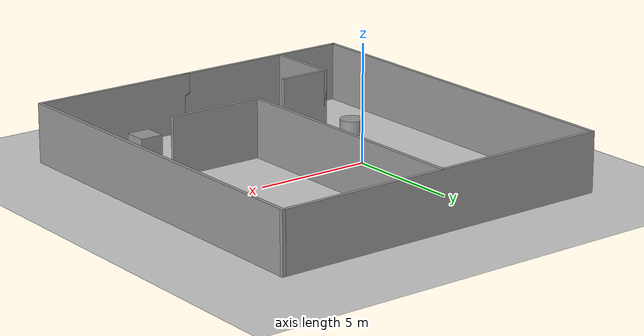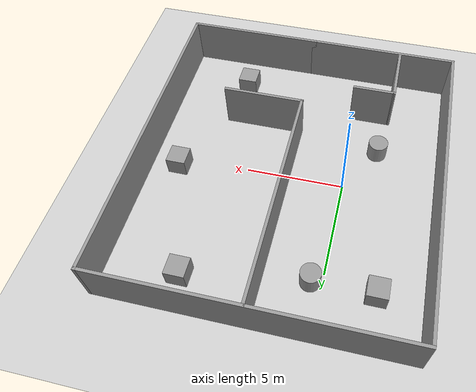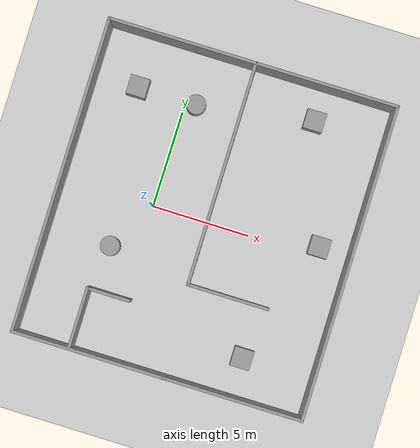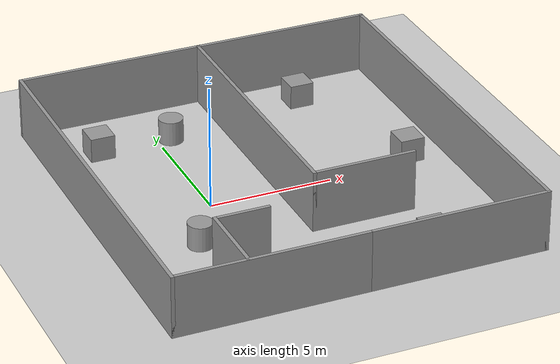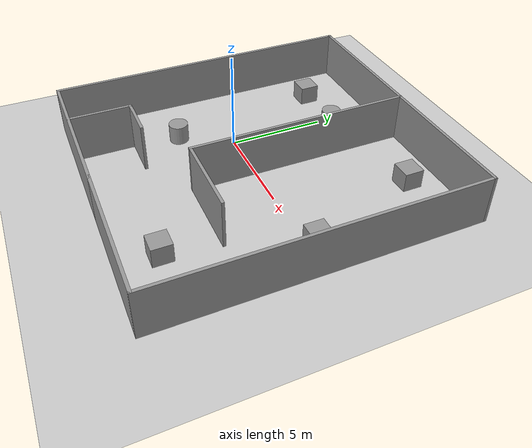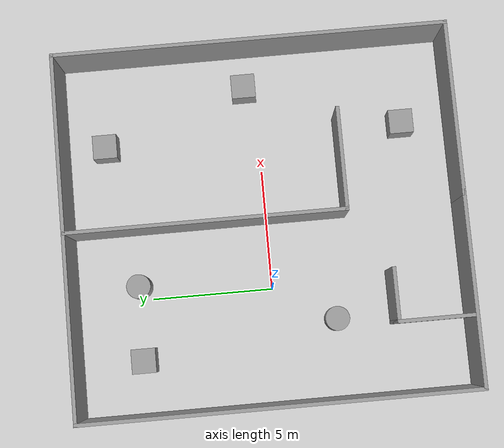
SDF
<sdf version="1.6">
 <world name="default">
  <light name="sun" type="directional">
   <pose>0 0 10 0 -0 0</pose>
   <diffuse>0.8 0.8 0.8 1</diffuse>
   <specular>0.2 0.2 0.2 1</specular>
   <attenuation>
    <range>1000</range>
    <constant>0.9</constant>
    <linear>0.01</linear>
    <quadratic>0.001</quadratic>
   </attenuation>
   <direction>-0.5 0.1 -0.9</direction>
  </light>
  <model name="ground_plane">
   <static>1</static>
   <link name="link">
    <collision name="collision">
     <geometry><plane><normal>0 0 1</normal><size>100 100</size></plane></geometry>
     <surface>
      <contact><collide_bitmask>65535</collide_bitmask></contact>
      <friction><ode><mu>100</mu><mu2>50</mu2></ode></friction>
     </surface>
    </collision>
    <visual name="visual">
     <cast_shadows>0</cast_shadows>
     <geometry><plane><normal>0 0 1</normal><size>100 100</size></plane></geometry>
     <material>
      <script><uri>file://media/materials/scripts/gazebo.material</uri><name>Gazebo/Grey</name></script>
     </material>
    </visual>
   </link>
  </model>
  <gravity>0 0 -9.8</gravity>
  <magnetic_field>6e-06 2.3e-05 -4.2e-05</magnetic_field>
  <atmosphere type="adiabatic"/>
  <physics name="default_physics" default="0" type="ode">
   <max_step_size>0.001</max_step_size>
   <real_time_factor>1</real_time_factor>
   <real_time_update_rate>1000</real_time_update_rate>
  </physics>
  <scene><ambient>0.4 0.4 0.4 1</ambient><background>0.7 0.7 0.7 1</background><shadows>1</shadows></scene>
  <audio><device>default</device></audio>
  <spherical_coordinates>
   <surface_model>EARTH_WGS84</surface_model>
   <latitude_deg>0</latitude_deg>
   <longitude_deg>0</longitude_deg>
   <elevation>0</elevation>
   <heading_deg>0</heading_deg>
  </spherical_coordinates>
  <model name="world0">
   <pose>2.7046 0.101866 0 0 -0 0</pose>
   <link name="Wall_11">
    <collision name="Wall_11_Collision">
     <geometry><box><size>7.25 0.15 2.5</size></box></geometry>
     <pose>0 0 1.25 0 -0 0</pose>
    </collision>
    <visual name="Wall_11_Visual">
     <pose>0 0 1.25 0 -0 0</pose>
     <geometry><box><size>7.25 0.15 2.5</size></box></geometry>
     <material>
      <script><uri>file://media/materials/scripts/gazebo.material</uri><name>Gazebo/Grey</name></script>
      <ambient>1 1 1 1</ambient>
     </material>
     <meta><layer>0</layer></meta>
    </visual>
    <pose>3.875 -8.05 0 0 -0 0</pose>
   </link>
   <link name="Wall_12">
    <collision name="Wall_12_Collision">
     <geometry><box><size>16.25 0.15 2.5</size></box></geometry>
     <pose>0 0 1.25 0 -0 0</pose>
    </collision>
    <visual name="Wall_12_Visual">
     <pose>0 0 1.25 0 -0 0</pose>
     <geometry><box><size>16.25 0.15 2.5</size></box></geometry>
     <material>
      <script><uri>file://media/materials/scripts/gazebo.material</uri><name>Gazebo/Grey</name></script>
      <ambient>1 1 1 1</ambient>
     </material>
     <meta><layer>0</layer></meta>
    </visual>
    <pose>7.425 -0 0 0 -0 1.5708</pose>
   </link>
   <link name="Wall_16">
    <collision name="Wall_16_Collision">
     <geometry><box><size>15 0.15 2.5</size></box></geometry>
     <pose>0 0 1.25 0 -0 0</pose>
    </collision>
    <visual name="Wall_16_Visual">
     <pose>0 0 1.25 0 -0 0</pose>
     <geometry><box><size>15 0.15 2.5</size></box></geometry>
     <material>
      <script><uri>file://media/materials/scripts/gazebo.material</uri><name>Gazebo/Grey</name></script>
      <ambient>1 1 1 1</ambient>
     </material>
     <meta><layer>0</layer></meta>
    </visual>
    <pose>0 8.05 0 0 -0 3.14159</pose>
   </link>
   <link name="Wall_17">
    <collision name="Wall_17_Collision">
     <geometry><box><size>16.25 0.15 2.5</size></box></geometry>
     <pose>0 0 1.25 0 -0 0</pose>
    </collision>
    <visual name="Wall_17_Visual">
     <pose>0 0 1.25 0 -0 0</pose>
     <geometry><box><size>16.25 0.15 2.5</size></box></geometry>
     <material>
      <script><uri>file://media/materials/scripts/gazebo.material</uri><name>Gazebo/Grey</name></script>
      <ambient>1 1 1 1</ambient>
     </material>
     <meta><layer>0</layer></meta>
    </visual>
    <pose>-7.425 -0 0 0 -0 -1.5708</pose>
   </link>
   <link name="Wall_18">
    <collision name="Wall_18_Collision">
     <geometry><box><size>8 0.15 2.5</size></box></geometry>
     <pose>0 0 1.25 0 -0 0</pose>
    </collision>
    <visual name="Wall_18_Visual">
     <pose>0 0 1.25 0 -0 0</pose>
     <geometry><box><size>8 0.15 2.5</size></box></geometry>
     <material>
      <script><uri>file://media/materials/scripts/gazebo.material</uri><name>Gazebo/Grey</name></script>
      <ambient>1 1 1 1</ambient>
     </material>
     <meta><layer>0</layer></meta>
    </visual>
    <pose>-3.5 -8.05 0 0 -0 0</pose>
   </link>
   <link name="Wall_20">
    <collision name="Wall_20_Collision">
     <geometry><box><size>11.5 0.15 2.5</size></box></geometry>
     <pose>0 0 1.25 0 -0 0</pose>
    </collision>
    <visual name="Wall_20_Visual">
     <pose>0 0 1.25 0 -0 0</pose>
     <geometry><box><size>11.5 0.15 2.5</size></box></geometry>
     <material>
      <script><uri>file://media/materials/scripts/gazebo.material</uri><name>Gazebo/Grey</name></script>
      <ambient>1 1 1 1</ambient>
     </material>
     <meta><layer>0</layer></meta>
    </visual>
    <pose>0.133751 2.34003 0 0 -0 -1.5708</pose>
   </link>
   <link name="Wall_21">
    <collision name="Wall_21_Collision">
     <geometry><box><size>4.25 0.15 2.5</size></box></geometry>
     <pose>0 0 1.25 0 -0 0</pose>
    </collision>
    <visual name="Wall_21_Visual">
     <pose>0 0 1.25 0 -0 0</pose>
     <geometry><box><size>4.25 0.15 2.5</size></box></geometry>
     <material>
      <script><uri>file://media/materials/scripts/gazebo.material</uri><name>Gazebo/Grey</name></script>
      <ambient>1 1 1 1</ambient>
     </material>
     <meta><layer>0</layer></meta>
    </visual>
    <pose>2.18375 -3.33497 0 0 -0 0</pose>
   </link>
   <link name="Wall_30">
    <collision name="Wall_30_Collision">
     <geometry><box><size>3.25 0.15 2.5</size></box></geometry>
     <pose>0 0 1.25 0 -0 0</pose>
    </collision>
    <visual name="Wall_30_Visual">
     <pose>0 0 1.25 0 -0 0</pose>
     <geometry><box><size>3.25 0.15 2.5</size></box></geometry>
     <material>
      <script><uri>file://media/materials/scripts/gazebo.material</uri><name>Gazebo/Grey</name></script>
      <ambient>1 1 1 1</ambient>
     </material>
     <meta><layer>0</layer></meta>
    </visual>
    <pose>-4.51864 -6.49584 0 0 -0 1.5708</pose>
   </link>
   <link name="Wall_31">
    <collision name="Wall_31_Collision">
     <geometry><box><size>2.25 0.15 2.5</size></box></geometry>
     <pose>0 0 1.25 0 -0 0</pose>
    </collision>
    <visual name="Wall_31_Visual">
     <pose>0 0 1.25 0 -0 0</pose>
     <geometry><box><size>2.25 0.15 2.5</size></box></geometry>
     <material>
      <script><uri>file://media/materials/scripts/gazebo.material</uri><name>Gazebo/Grey</name></script>
      <ambient>1 1 1 1</ambient>
     </material>
     <meta><layer>0</layer></meta>
    </visual>
    <pose>-3.46864 -4.94584 0 0 -0 0</pose>
   </link>
   <static>1</static>
  </model>
  <model name="world0_0">
   <link name="link_0">
    <inertial>
     <mass>100</mass>
     <inertia><ixx>14.5833</ixx><ixy>0</ixy><ixz>0</ixz><iyy>14.5833</iyy><iyz>0</iyz><izz>12.5</izz></inertia>
    </inertial>
    <pose>-4.48513 -4.11374 0 0 -0 0</pose>
    <visual name="visual">
     <geometry><cylinder><radius>0.5</radius><length>1</length></cylinder></geometry>
     <material>
      <lighting>1</lighting>
      <script><uri>file://media/materials/scripts/gazebo.material</uri><name>Gazebo/Grey</name></script>
      <shader type="vertex"><normal_map>__default__</normal_map></shader>
     </material>
    </visual>
    <collision name="collision">
     <geometry><cylinder><radius>0.5</radius><length>1</length></cylinder></geometry>
     <surface>
      <friction>
       <ode><mu>1</mu><mu2>1</mu2><fdir1>0 0 0</fdir1><slip1>0</slip1><slip2>0</slip2></ode>
       <torsional>
        <coefficient>1</coefficient>
        <patch_radius>0</patch_radius>
        <surface_radius>0</surface_radius>
        <use_patch_radius>1</use_patch_radius>
        <ode><slip>0</slip></ode>
       </torsional>
      </friction>
      <bounce><restitution_coefficient>0</restitution_coefficient><threshold>1e+06</threshold></bounce>
      <contact>
       <collide_without_contact>0</collide_without_contact>
       <collide_without_contact_bitmask>1</collide_without_contact_bitmask>
       <collide_bitmask>1</collide_bitmask>
       <ode>
        <soft_cfm>0</soft_cfm>
        <soft_erp>0.2</soft_erp>
        <kp>1e+13</kp>
        <kd>1</kd>
        <max_vel>0.01</max_vel>
        <min_depth>0</min_depth>
       </ode>
       <bullet>
        <split_impulse>1</split_impulse>
        <split_impulse_penetration_threshold>-0.01</split_impulse_penetration_threshold>
        <soft_cfm>0</soft_cfm>
        <soft_erp>0.2</soft_erp>
        <kp>1e+13</kp>
        <kd>1</kd>
       </bullet>
      </contact>
     </surface>
    </collision>
   </link>
   <link name="link_1">
    <inertial>
     <mass>100</mass>
     <inertia><ixx>16.6667</ixx><ixy>0</ixy><ixz>0</ixz><iyy>16.6667</iyy><iyz>0</iyz><izz>16.6667</izz></inertia>
    </inertial>
    <pose>-5.51229 3.92693 0 0 -0 0</pose>
    <visual name="visual">
     <geometry><box><size>1 1 1</size></box></geometry>
     <material>
      <lighting>1</lighting>
      <script><uri>file://media/materials/scripts/gazebo.material</uri><name>Gazebo/Grey</name></script>
      <shader type="vertex"><normal_map>__default__</normal_map></shader>
     </material>
    </visual>
    <collision name="collision">
     <geometry><box><size>1 1 1</size></box></geometry>
     <surface>
      <friction>
       <ode><mu>1</mu><mu2>1</mu2><fdir1>0 0 0</fdir1><slip1>0</slip1><slip2>0</slip2></ode>
       <torsional>
        <coefficient>1</coefficient>
        <patch_radius>0</patch_radius>
        <surface_radius>0</surface_radius>
        <use_patch_radius>1</use_patch_radius>
        <ode><slip>0</slip></ode>
       </torsional>
      </friction>
      <bounce><restitution_coefficient>0</restitution_coefficient><threshold>1e+06</threshold></bounce>
      <contact>
       <collide_without_contact>0</collide_without_contact>
       <collide_without_contact_bitmask>1</collide_without_contact_bitmask>
       <collide_bitmask>1</collide_bitmask>
       <ode>
        <soft_cfm>0</soft_cfm>
        <soft_erp>0.2</soft_erp>
        <kp>1e+13</kp>
        <kd>1</kd>
        <max_vel>0.01</max_vel>
        <min_depth>0</min_depth>
       </ode>
       <bullet>
        <split_impulse>1</split_impulse>
        <split_impulse_penetration_threshold>-0.01</split_impulse_penetration_threshold>
        <soft_cfm>0</soft_cfm>
        <soft_erp>0.2</soft_erp>
        <kp>1e+13</kp>
        <kd>1</kd>
       </bullet>
      </contact>
     </surface>
    </collision>
   </link>
   <link name="link_2">
    <inertial>
     <mass>100</mass>
     <inertia><ixx>14.5833</ixx><ixy>0</ixy><ixz>0</ixz><iyy>14.5833</iyy><iyz>0</iyz><izz>12.5</izz></inertia>
    </inertial>
    <pose>-2.46782 3.91377 0 0 -0 0</pose>
    <visual name="visual">
     <geometry><cylinder><radius>0.5</radius><length>1</length></cylinder></geometry>
     <material>
      <lighting>1</lighting>
      <script><uri>file://media/materials/scripts/gazebo.material</uri><name>Gazebo/Grey</name></script>
      <shader type="vertex"><normal_map>__default__</normal_map></shader>
     </material>
    </visual>
    <collision name="collision">
     <geometry><cylinder><radius>0.5</radius><length>1</length></cylinder></geometry>
     <surface>
      <friction>
       <ode><mu>1</mu><mu2>1</mu2><fdir1>0 0 0</fdir1><slip1>0</slip1><slip2>0</slip2></ode>
       <torsional>
        <coefficient>1</coefficient>
        <patch_radius>0</patch_radius>
        <surface_radius>0</surface_radius>
        <use_patch_radius>1</use_patch_radius>
        <ode><slip>0</slip></ode>
       </torsional>
      </friction>
      <bounce><restitution_coefficient>0</restitution_coefficient><threshold>1e+06</threshold></bounce>
      <contact>
       <collide_without_contact>0</collide_without_contact>
       <collide_without_contact_bitmask>1</collide_without_contact_bitmask>
       <collide_bitmask>1</collide_bitmask>
       <ode>
        <soft_cfm>0</soft_cfm>
        <soft_erp>0.2</soft_erp>
        <kp>1e+13</kp>
        <kd>1</kd>
        <max_vel>0.01</max_vel>
        <min_depth>0</min_depth>
       </ode>
       <bullet>
        <split_impulse>1</split_impulse>
        <split_impulse_penetration_threshold>-0.01</split_impulse_penetration_threshold>
        <soft_cfm>0</soft_cfm>
        <soft_erp>0.2</soft_erp>
        <kp>1e+13</kp>
        <kd>1</kd>
       </bullet>
      </contact>
     </surface>
    </collision>
   </link>
   <link name="link_3">
    <inertial>
     <mass>100</mass>
     <inertia><ixx>16.6667</ixx><ixy>0</ixy><ixz>0</ixz><iyy>16.6667</iyy><iyz>0</iyz><izz>16.6667</izz></inertia>
    </inertial>
    <pose>3.46332 4.88963 0 0 -0 0</pose>
    <visual name="visual">
     <geometry><box><size>1 1 1</size></box></geometry>
     <material>
      <lighting>1</lighting>
      <script><uri>file://media/materials/scripts/gazebo.material</uri><name>Gazebo/Grey</name></script>
      <shader type="vertex"><normal_map>__default__</normal_map></shader>
     </material>
    </visual>
    <collision name="collision">
     <geometry><box><size>1 1 1</size></box></geometry>
     <surface>
      <friction>
       <ode><mu>1</mu><mu2>1</mu2><fdir1>0 0 0</fdir1><slip1>0</slip1><slip2>0</slip2></ode>
       <torsional>
        <coefficient>1</coefficient>
        <patch_radius>0</patch_radius>
        <surface_radius>0</surface_radius>
        <use_patch_radius>1</use_patch_radius>
        <ode><slip>0</slip></ode>
       </torsional>
      </friction>
      <bounce><restitution_coefficient>0</restitution_coefficient><threshold>1e+06</threshold></bounce>
      <contact>
       <collide_without_contact>0</collide_without_contact>
       <collide_without_contact_bitmask>1</collide_without_contact_bitmask>
       <collide_bitmask>1</collide_bitmask>
       <ode>
        <soft_cfm>0</soft_cfm>
        <soft_erp>0.2</soft_erp>
        <kp>1e+13</kp>
        <kd>1</kd>
        <max_vel>0.01</max_vel>
        <min_depth>0</min_depth>
       </ode>
       <bullet>
        <split_impulse>1</split_impulse>
        <split_impulse_penetration_threshold>-0.01</split_impulse_penetration_threshold>
        <soft_cfm>0</soft_cfm>
        <soft_erp>0.2</soft_erp>
        <kp>1e+13</kp>
        <kd>1</kd>
       </bullet>
      </contact>
     </surface>
    </collision>
   </link>
   <link name="link_4">
    <inertial>
     <mass>100</mass>
     <inertia><ixx>16.6667</ixx><ixy>0</ixy><ixz>0</ixz><iyy>16.6667</iyy><iyz>0</iyz><izz>16.6667</izz></inertia>
    </inertial>
    <pose>3.46558 -7.53514 0 0 -0 0</pose>
    <visual name="visual">
     <geometry><box><size>1 1 1</size></box></geometry>
     <material>
      <lighting>1</lighting>
      <script><uri>file://media/materials/scripts/gazebo.material</uri><name>Gazebo/Grey</name></script>
      <shader type="vertex"><normal_map>__default__</normal_map></shader>
     </material>
    </visual>
    <collision name="collision">
     <geometry><box><size>1 1 1</size></box></geometry>
     <surface>
      <friction>
       <ode><mu>1</mu><mu2>1</mu2><fdir1>0 0 0</fdir1><slip1>0</slip1><slip2>0</slip2></ode>
       <torsional>
        <coefficient>1</coefficient>
        <patch_radius>0</patch_radius>
        <surface_radius>0</surface_radius>
        <use_patch_radius>1</use_patch_radius>
        <ode><slip>0</slip></ode>
       </torsional>
      </friction>
      <bounce><restitution_coefficient>0</restitution_coefficient><threshold>1e+06</threshold></bounce>
      <contact>
       <collide_without_contact>0</collide_without_contact>
       <collide_without_contact_bitmask>1</collide_without_contact_bitmask>
       <collide_bitmask>1</collide_bitmask>
       <ode>
        <soft_cfm>0</soft_cfm>
        <soft_erp>0.2</soft_erp>
        <kp>1e+13</kp>
        <kd>1</kd>
        <max_vel>0.01</max_vel>
        <min_depth>0</min_depth>
       </ode>
       <bullet>
        <split_impulse>1</split_impulse>
        <split_impulse_penetration_threshold>-0.01</split_impulse_penetration_threshold>
        <soft_cfm>0</soft_cfm>
        <soft_erp>0.2</soft_erp>
        <kp>1e+13</kp>
        <kd>1</kd>
       </bullet>
      </contact>
     </surface>
    </collision>
   </link>
   <link name="link_5">
    <inertial>
     <mass>100</mass>
     <inertia><ixx>16.6667</ixx><ixy>0</ixy><ixz>0</ixz><iyy>16.6667</iyy><iyz>0</iyz><izz>16.6667</izz></inertia>
    </inertial>
    <pose>5.53634 -1.08146 0 0 -0 0</pose>
    <visual name="visual">
     <geometry><box><size>1 1 1</size></box></geometry>
     <material>
      <lighting>1</lighting>
      <script><uri>file://media/materials/scripts/gazebo.material</uri><name>Gazebo/Grey</name></script>
      <shader type="vertex"><normal_map>__default__</normal_map></shader>
     </material>
    </visual>
    <collision name="collision">
     <geometry><box><size>1 1 1</size></box></geometry>
     <surface>
      <friction>
       <ode><mu>1</mu><mu2>1</mu2><fdir1>0 0 0</fdir1><slip1>0</slip1><slip2>0</slip2></ode>
       <torsional>
        <coefficient>1</coefficient>
        <patch_radius>0</patch_radius>
        <surface_radius>0</surface_radius>
        <use_patch_radius>1</use_patch_radius>
        <ode><slip>0</slip></ode>
       </torsional>
      </friction>
      <bounce><restitution_coefficient>0</restitution_coefficient><threshold>1e+06</threshold></bounce>
      <contact>
       <collide_without_contact>0</collide_without_contact>
       <collide_without_contact_bitmask>1</collide_without_contact_bitmask>
       <collide_bitmask>1</collide_bitmask>
       <ode>
        <soft_cfm>0</soft_cfm>
        <soft_erp>0.2</soft_erp>
        <kp>1e+13</kp>
        <kd>1</kd>
        <max_vel>0.01</max_vel>
        <min_depth>0</min_depth>
       </ode>
       <bullet>
        <split_impulse>1</split_impulse>
        <split_impulse_penetration_threshold>-0.01</split_impulse_penetration_threshold>
        <soft_cfm>0</soft_cfm>
        <soft_erp>0.2</soft_erp>
        <kp>1e+13</kp>
        <kd>1</kd>
       </bullet>
      </contact>
     </surface>
    </collision>
   </link>
   <static>0</static>
   <pose>3.02555 1.57187 0.5 0 -0 0</pose>
  </model>
 </world>
</sdf>
